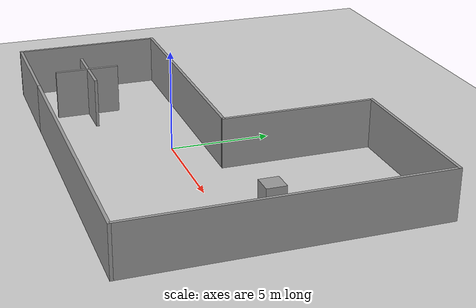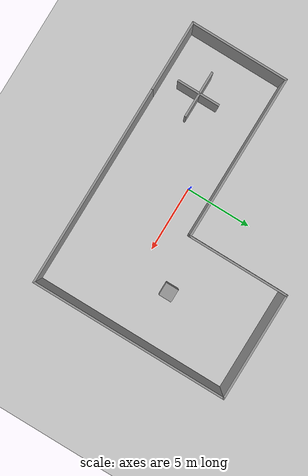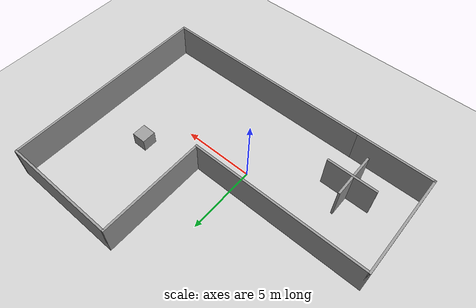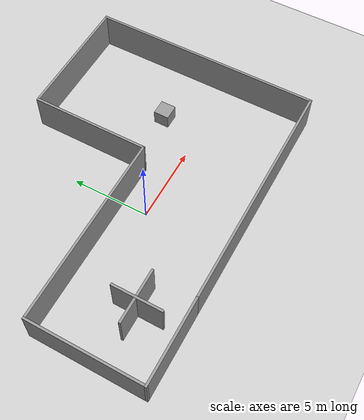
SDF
<sdf version="1.7">
 <world name="default">
  <physics type="ode">
   <max_step_size>0.0002</max_step_size>
   <real_time_factor>1</real_time_factor>
   <real_time_update_rate>5000</real_time_update_rate>
   <ode>
    <solver>
     <type>quick</type>
     <iters>50</iters>
     <sor>1.3</sor>
     <use_dynamic_moi_rescaling>0</use_dynamic_moi_rescaling>
    </solver>
    <constraints>
     <cfm>0</cfm>
     <erp>0.2</erp>
     <contact_max_correcting_vel>10</contact_max_correcting_vel>
     <contact_surface_layer>0.001</contact_surface_layer>
    </constraints>
   </ode>
  </physics>
  <scene>
   <sky><clouds><speed>12</speed></clouds></sky>
   <ambient>0.4 0.4 0.4 1</ambient>
   <background>0.7 0.7 0.7 1</background>
   <shadows>1</shadows>
  </scene>
  <light name="sun" type="directional">
   <pose>0 0 10 0 -0 0</pose>
   <diffuse>0.8 0.8 0.8 1</diffuse>
   <specular>0.2 0.2 0.2 1</specular>
   <attenuation>
    <range>1000</range>
    <constant>0.9</constant>
    <linear>0.01</linear>
    <quadratic>0.001</quadratic>
   </attenuation>
   <direction>-0.5 0.1 -0.9</direction>
   <spot><inner_angle>0</inner_angle><outer_angle>0</outer_angle><falloff>0</falloff></spot>
  </light>
  <model name="ground_plane">
   <static>1</static>
   <link name="link">
    <collision name="collision">
     <geometry><plane><normal>0 0 1</normal><size>100 100</size></plane></geometry>
     <surface>
      <contact><collide_bitmask>65535</collide_bitmask></contact>
      <friction><ode><mu>100</mu><mu2>50</mu2></ode></friction>
     </surface>
    </collision>
    <visual name="visual">
     <cast_shadows>0</cast_shadows>
     <geometry><plane><normal>0 0 1</normal><size>100 100</size></plane></geometry>
     <material>
      <script><uri>file://media/materials/scripts/gazebo.material</uri><name>Gazebo/Grey</name></script>
     </material>
    </visual>
   </link>
  </model>
  <gravity>0 0 -9.81</gravity>
  <magnetic_field>6e-06 2.3e-05 -4.2e-05</magnetic_field>
  <atmosphere type="adiabatic"/>
  <spherical_coordinates>
   <surface_model>EARTH_WGS84</surface_model>
   <latitude_deg>0</latitude_deg>
   <longitude_deg>0</longitude_deg>
   <elevation>0</elevation>
   <heading_deg>0</heading_deg>
  </spherical_coordinates>
  <model name="move_map">
   <pose>0.64513 1.81916 0 0 -0 0</pose>
   <link name="Wall_1">
    <collision name="Wall_1_Collision">
     <geometry><box><size>3.5 0.15 2.5</size></box></geometry>
     <pose>0 0 1.25 0 -0 0</pose>
    </collision>
    <visual name="Wall_1_Visual">
     <pose>0 0 1.25 0 -0 0</pose>
     <geometry><box><size>3.5 0.15 2.5</size></box></geometry>
     <material>
      <script><uri>file://media/materials/scripts/gazebo.material</uri><name>Gazebo/Grey</name></script>
      <ambient>1 1 1 1</ambient>
     </material>
     <meta><layer>0</layer></meta>
    </visual>
    <pose>-6.31013 -4.61916 0 0 -0 3.14159</pose>
   </link>
   <link name="Wall_10">
    <collision name="Wall_10_Collision">
     <geometry><box><size>15 0.15 2.5</size></box></geometry>
     <pose>0 0 1.25 0 -0 0</pose>
    </collision>
    <visual name="Wall_10_Visual">
     <pose>0 0 1.25 0 -0 0</pose>
     <geometry><box><size>15 0.15 2.5</size></box></geometry>
     <material>
      <script><uri>file://media/materials/scripts/gazebo.material</uri><name>Gazebo/Grey</name></script>
      <ambient>1 1 1 1</ambient>
     </material>
     <meta><layer>0</layer></meta>
    </visual>
    <pose>10.225 0.05 0 0 -0 -1.5708</pose>
   </link>
   <link name="Wall_12">
    <collision name="Wall_12_Collision">
     <geometry><box><size>15.25 0.15 2.5</size></box></geometry>
     <pose>0 0 1.25 0 -0 0</pose>
    </collision>
    <visual name="Wall_12_Visual">
     <pose>0 0 1.25 0 -0 0</pose>
     <geometry><box><size>15.25 0.15 2.5</size></box></geometry>
     <material>
      <script><uri>file://media/materials/scripts/gazebo.material</uri><name>Gazebo/Grey</name></script>
      <ambient>1 1 1 1</ambient>
     </material>
     <meta><layer>0</layer></meta>
    </visual>
    <pose>2.675 -7.475 0 0 -0 0</pose>
   </link>
   <link name="Wall_3">
    <collision name="Wall_3_Collision">
     <geometry><box><size>3.25 0.15 2.5</size></box></geometry>
     <pose>0 0 1.25 0 -0 0</pose>
    </collision>
    <visual name="Wall_3_Visual">
     <pose>0 0 1.25 0 -0 0</pose>
     <geometry><box><size>3.25 0.15 2.5</size></box></geometry>
     <material>
      <script><uri>file://media/materials/scripts/gazebo.material</uri><name>Gazebo/Grey</name></script>
      <ambient>1 1 1 1</ambient>
     </material>
     <meta><layer>0</layer></meta>
    </visual>
    <pose>-6.39121 -4.68917 0 0 -0 -1.5708</pose>
   </link>
   <link name="Wall_5">
    <collision name="Wall_5_Collision">
     <geometry><box><size>5.5 0.15 2.5</size></box></geometry>
     <pose>0 0 1.25 0 -0 0</pose>
    </collision>
    <visual name="Wall_5_Visual">
     <pose>0 0 1.25 0 -0 0</pose>
     <geometry><box><size>5.5 0.15 2.5</size></box></geometry>
     <material>
      <script><uri>file://media/materials/scripts/gazebo.material</uri><name>Gazebo/Grey</name></script>
      <ambient>1 1 1 1</ambient>
     </material>
     <meta><layer>0</layer></meta>
    </visual>
    <pose>-7.55 -7.475 0 0 -0 3.14159</pose>
   </link>
   <link name="Wall_6">
    <collision name="Wall_6_Collision">
     <geometry><box><size>7.5 0.15 2.5</size></box></geometry>
     <pose>0 0 1.25 0 -0 0</pose>
    </collision>
    <visual name="Wall_6_Visual">
     <pose>0 0 1.25 0 -0 0</pose>
     <geometry><box><size>7.5 0.15 2.5</size></box></geometry>
     <material>
      <script><uri>file://media/materials/scripts/gazebo.material</uri><name>Gazebo/Grey</name></script>
      <ambient>1 1 1 1</ambient>
     </material>
     <meta><layer>0</layer></meta>
    </visual>
    <pose>-10.225 -3.8 0 0 -0 1.5708</pose>
   </link>
   <link name="Wall_7">
    <collision name="Wall_7_Collision">
     <geometry><box><size>12.5 0.15 2.5</size></box></geometry>
     <pose>0 0 1.25 0 -0 0</pose>
    </collision>
    <visual name="Wall_7_Visual">
     <pose>0 0 1.25 0 -0 0</pose>
     <geometry><box><size>12.5 0.15 2.5</size></box></geometry>
     <material>
      <script><uri>file://media/materials/scripts/gazebo.material</uri><name>Gazebo/Grey</name></script>
      <ambient>1 1 1 1</ambient>
     </material>
     <meta><layer>0</layer></meta>
    </visual>
    <pose>-4.05 -0.125 0 0 -0 0</pose>
   </link>
   <link name="Wall_8">
    <collision name="Wall_8_Collision">
     <geometry><box><size>7.75 0.15 2.5</size></box></geometry>
     <pose>0 0 1.25 0 -0 0</pose>
    </collision>
    <visual name="Wall_8_Visual">
     <pose>0 0 1.25 0 -0 0</pose>
     <geometry><box><size>7.75 0.15 2.5</size></box></geometry>
     <material>
      <script><uri>file://media/materials/scripts/gazebo.material</uri><name>Gazebo/Grey</name></script>
      <ambient>1 1 1 1</ambient>
     </material>
     <meta><layer>0</layer></meta>
    </visual>
    <pose>2.125 3.675 0 0 -0 1.5708</pose>
   </link>
   <link name="Wall_9">
    <collision name="Wall_9_Collision">
     <geometry><box><size>8.25 0.15 2.5</size></box></geometry>
     <pose>0 0 1.25 0 -0 0</pose>
    </collision>
    <visual name="Wall_9_Visual">
     <pose>0 0 1.25 0 -0 0</pose>
     <geometry><box><size>8.25 0.15 2.5</size></box></geometry>
     <material>
      <script><uri>file://media/materials/scripts/gazebo.material</uri><name>Gazebo/Grey</name></script>
      <ambient>1 1 1 1</ambient>
     </material>
     <meta><layer>0</layer></meta>
    </visual>
    <pose>6.175 7.475 0 0 -0 0</pose>
   </link>
   <static>1</static>
  </model>
  <model name="unit_box">
   <pose>6.88278 2.54703 0.5 0 -0 0</pose>
   <link name="link">
    <inertial>
     <mass>1</mass>
     <inertia>
      <ixx>0.166667</ixx>
      <ixy>0</ixy>
      <ixz>0</ixz>
      <iyy>0.166667</iyy>
      <iyz>0</iyz>
      <izz>0.166667</izz>
     </inertia>
    </inertial>
    <collision name="collision"><geometry><box><size>1 1 1</size></box></geometry></collision>
    <visual name="visual">
     <geometry><box><size>1 1 1</size></box></geometry>
     <material>
      <script><name>Gazebo/Grey</name><uri>file://media/materials/scripts/gazebo.material</uri></script>
     </material>
    </visual>
   </link>
  </model>
 </world>
</sdf>
